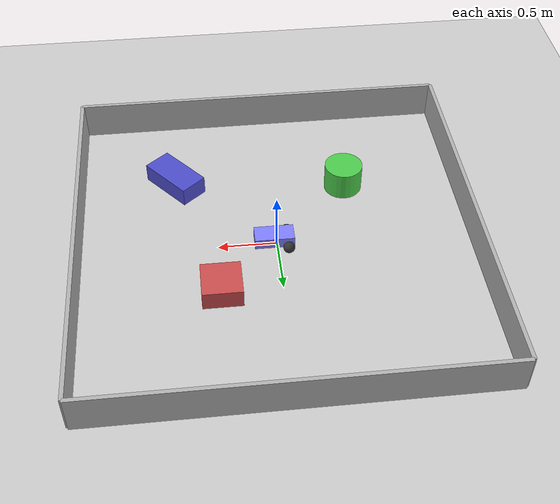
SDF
<?xml version="1.0" ?>
<!-- SCALED TO 1/6 SIZE (scale=0.1667) for ~real robot dimensions -->
<sdf version="1.8">
  <world name="slam_world">

    <physics name="1ms" type="ignored">
      <max_step_size>0.001</max_step_size>
      <real_time_factor>1.0</real_time_factor>
    </physics>

    <plugin
      filename="gz-sim-physics-system"
      name="gz::sim::systems::Physics">
    </plugin>
    <plugin
      filename="gz-sim-sensors-system"
      name="gz::sim::systems::Sensors">
      <render_engine>ogre2</render_engine>
    </plugin>
    <plugin
      filename="gz-sim-imu-system"
      name="gz::sim::systems::Imu">
    </plugin>
    <plugin
      filename="gz-sim-user-commands-system"
      name="gz::sim::systems::UserCommands">
    </plugin>
    <plugin
      filename="gz-sim-scene-broadcaster-system"
      name="gz::sim::systems::SceneBroadcaster">
    </plugin>

    <light type="directional" name="sun">
      <cast_shadows>true</cast_shadows>
      <pose>0.000000 0.000000 1.666667 0 0 0</pose>
      <diffuse>1 1 1 1</diffuse>
      <specular>0.5 0.5 0.5 1</specular>
      <attenuation>
        <range>1000</range>
        <constant>0.9</constant>
        <linear>0.01</linear>
        <quadratic>0.001</quadratic>
      </attenuation>
      <direction>-0.5 0.1 -0.9</direction>
    </light>

    <!-- Ground plane -->
    <model name="ground_plane">
      <static>true</static>
      <link name="link">
        <collision name="collision">
          <geometry>
            <plane>
              <normal>0 0 1</normal>
              <size>100 100</size>
            </plane>
          </geometry>
        </collision>
        <visual name="visual">
          <geometry>
            <plane>
              <normal>0 0 1</normal>
              <size>100 100</size>
            </plane>
          </geometry>
          <material>
            <ambient>0.8 0.8 0.8 1</ambient>
            <diffuse>0.8 0.8 0.8 1</diffuse>
            <specular>0.8 0.8 0.8 1</specular>
          </material>
        </visual>
      </link>
    </model>

    <!-- Outer walls forming a room -->
    <model name="wall_north">
      <static>true</static>
      <pose>0.000000 1.666667 0.166667 0 0 0</pose>
      <link name="link">
        <collision name="collision">
          <geometry>
            <box>
              <size>3.333333 0.033333 0.333333</size>
            </box>
          </geometry>
        </collision>
        <visual name="visual">
          <geometry>
            <box>
              <size>3.333333 0.033333 0.333333</size>
            </box>
          </geometry>
          <material>
            <ambient>0.7 0.7 0.7 1</ambient>
            <diffuse>0.7 0.7 0.7 1</diffuse>
          </material>
        </visual>
      </link>
    </model>

    <model name="wall_south">
      <static>true</static>
      <pose>0.000000 -1.666667 0.166667 0 0 0</pose>
      <link name="link">
        <collision name="collision">
          <geometry>
            <box>
              <size>3.333333 0.033333 0.333333</size>
            </box>
          </geometry>
        </collision>
        <visual name="visual">
          <geometry>
            <box>
              <size>3.333333 0.033333 0.333333</size>
            </box>
          </geometry>
          <material>
            <ambient>0.7 0.7 0.7 1</ambient>
            <diffuse>0.7 0.7 0.7 1</diffuse>
          </material>
        </visual>
      </link>
    </model>

    <model name="wall_east">
      <static>true</static>
      <pose>1.666667 0.000000 0.166667 0 0 0</pose>
      <link name="link">
        <collision name="collision">
          <geometry>
            <box>
              <size>0.033333 3.333333 0.333333</size>
            </box>
          </geometry>
        </collision>
        <visual name="visual">
          <geometry>
            <box>
              <size>0.033333 3.333333 0.333333</size>
            </box>
          </geometry>
          <material>
            <ambient>0.7 0.7 0.7 1</ambient>
            <diffuse>0.7 0.7 0.7 1</diffuse>
          </material>
        </visual>
      </link>
    </model>

    <model name="wall_west">
      <static>true</static>
      <pose>-1.666667 0.000000 0.166667 0 0 0</pose>
      <link name="link">
        <collision name="collision">
          <geometry>
            <box>
              <size>0.033333 3.333333 0.333333</size>
            </box>
          </geometry>
        </collision>
        <visual name="visual">
          <geometry>
            <box>
              <size>0.033333 3.333333 0.333333</size>
            </box>
          </geometry>
          <material>
            <ambient>0.7 0.7 0.7 1</ambient>
            <diffuse>0.7 0.7 0.7 1</diffuse>
          </material>
        </visual>
      </link>
    </model>

    <!-- Some obstacles for SLAM -->
    <model name="obstacle_1">
      <static>true</static>
      <pose>0.500000 0.500000 0.083333 0 0 0</pose>
      <link name="link">
        <collision name="collision">
          <geometry>
            <box>
              <size>0.333333 0.333333 0.166667</size>
            </box>
          </geometry>
        </collision>
        <visual name="visual">
          <geometry>
            <box>
              <size>0.333333 0.333333 0.166667</size>
            </box>
          </geometry>
          <material>
            <ambient>0.5 0.2 0.2 1</ambient>
            <diffuse>0.8 0.3 0.3 1</diffuse>
          </material>
        </visual>
      </link>
    </model>

    <model name="obstacle_2">
      <static>true</static>
      <pose>-0.666667 -0.666667 0.125000 0 0 0</pose>
      <link name="link">
        <collision name="collision">
          <geometry>
            <cylinder>
              <radius>0.166667</radius>
              <length>0.250000</length>
            </cylinder>
          </geometry>
        </collision>
        <visual name="visual">
          <geometry>
            <cylinder>
              <radius>0.166667</radius>
              <length>0.250000</length>
            </cylinder>
          </geometry>
          <material>
            <ambient>0.2 0.5 0.2 1</ambient>
            <diffuse>0.3 0.8 0.3 1</diffuse>
          </material>
        </visual>
      </link>
    </model>

    <model name="obstacle_3">
      <static>true</static>
      <pose>0.833333 -0.833333 0.083333 0 0 0.7</pose>
      <link name="link">
        <collision name="collision">
          <geometry>
            <box>
              <size>0.250000 0.500000 0.166667</size>
            </box>
          </geometry>
        </collision>
        <visual name="visual">
          <geometry>
            <box>
              <size>0.250000 0.500000 0.166667</size>
            </box>
          </geometry>
          <material>
            <ambient>0.2 0.2 0.5 1</ambient>
            <diffuse>0.3 0.3 0.8 1</diffuse>
          </material>
        </visual>
      </link>
    </model>

    <!-- SLAM Robot with diff drive and lidar -->
    <model name='slam_bot'>
      <pose>0.000000 0.000000 0.054167 0 0 3.14159</pose>

      <link name='chassis'>
        <pose>-0.025238 0.000000 0.029167 0 0 0</pose>
        <inertial>
          <mass>3.0</mass>
          <inertia>
            <ixx>0.009</ixx>
            <ixy>0.000000000</ixy>
            <ixz>0.000000000</ixz>
            <iyy>0.030</iyy>
            <iyz>0.000000000</iyz>
            <izz>0.035</izz>
          </inertia>
        </inertial>
        <visual name='visual'>
          <geometry>
            <box>
              <size>0.335237 0.166667 0.094788</size>
            </box>
          </geometry>
          <material>
            <ambient>0.5 0.5 1.0 1</ambient>
            <diffuse>0.5 0.5 1.0 1</diffuse>
            <specular>0.0 0.0 1.0 1</specular>
          </material>
        </visual>
        <collision name='collision'>
          <geometry>
            <box>
              <size>0.335237 0.166667 0.094788</size>
            </box>
          </geometry>
        </collision>

        <!-- 2D Lidar sensor on top of chassis -->
        <sensor name='lidar' type='gpu_lidar'>
          <pose>0.133333 0.000000 0.066667 0 0 0</pose>
          <topic>/slam_bot/scan</topic>
          <gz_frame_id>lidar_link</gz_frame_id>
          <update_rate>10</update_rate>
          <enable_metrics>false</enable_metrics>
          <lidar>
            <scan>
              <horizontal>
                <samples>180</samples>
                <resolution>1</resolution>
                <min_angle>-1.5708</min_angle>
                <max_angle>1.5708</max_angle>
              </horizontal>
            </scan>
            <range>
              <min>0.12</min>
              <max>30.0</max>
              <resolution>0.01</resolution>
            </range>
            <noise>
              <type>gaussian</type>
              <mean>0.0</mean>
              <stddev>0.01</stddev>
            </noise>
          </lidar>
          <always_on>1</always_on>
          <visualize>true</visualize>
        </sensor>

        <!-- IMU sensor at robot center -->
        <sensor name='imu' type='imu'>
          <pose>0.000000 0.000000 0.000000 0 0 0</pose>
          <topic>/slam_bot/imu</topic>
          <gz_frame_id>imu_link</gz_frame_id>
          <update_rate>200</update_rate>
          <enable_metrics>true</enable_metrics>
          <always_on>1</always_on>
          <visualize>true</visualize>
          <imu>
            <orientation_reference_frame>
              <localization>CUSTOM</localization>
              <custom_rpy>0 0 0</custom_rpy>
              <grav_dir_x>0 0 -1</grav_dir_x>
            </orientation_reference_frame>
            <angular_velocity>
              <x>
                <noise type="gaussian">
                  <mean>0.0</mean>
                  <stddev>2e-4</stddev>
                  <bias_mean>0.0000075</bias_mean>
                  <bias_stddev>0.0000008</bias_stddev>
                </noise>
              </x>
              <y>
                <noise type="gaussian">
                  <mean>0.0</mean>
                  <stddev>2e-4</stddev>
                  <bias_mean>0.0000075</bias_mean>
                  <bias_stddev>0.0000008</bias_stddev>
                </noise>
              </y>
              <z>
                <noise type="gaussian">
                  <mean>0.0</mean>
                  <stddev>2e-4</stddev>
                  <bias_mean>0.0000075</bias_mean>
                  <bias_stddev>0.0000008</bias_stddev>
                </noise>
              </z>
            </angular_velocity>
            <linear_acceleration>
              <x>
                <noise type="none"/>
              </x>
              <y>
                <noise type="none"/>
              </y>
              <z>
                <noise type="none"/>
              </z>
            </linear_acceleration>
          </imu>
        </sensor>
      </link>

      <link name='left_wheel'>
        <pose>0.092380 0.104171 -0.004167 -1.5707 0 0</pose>
        <inertial>
          <mass>0.1</mass>
          <inertia>
            <ixx>0.0001</ixx>
            <ixy>0.000000000</ixy>
            <ixz>0.000000000</ixz>
            <iyy>0.0001</iyy>
            <iyz>0.000000000</iyz>
            <izz>0.0001</izz>
          </inertia>
        </inertial>
        <visual name='visual'>
          <geometry>
            <sphere>
              <radius>0.050000</radius>
            </sphere>
          </geometry>
          <material>
            <ambient>0.2 0.2 0.2 1</ambient>
            <diffuse>0.2 0.2 0.2 1</diffuse>
            <specular>0.2 0.2 0.2 1</specular>
          </material>
        </visual>
        <collision name='collision'>
          <geometry>
            <sphere>
              <radius>0.050000</radius>
            </sphere>
          </geometry>
          <surface>
            <friction>
              <ode>
                <mu>1</mu>
                <mu2>1</mu2>
                <slip1>0.035</slip1>
                <slip2>0</slip2>
                <fdir1>0 0 1</fdir1>
              </ode>
            </friction>
          </surface>
        </collision>
      </link>

      <link name='right_wheel'>
        <pose>0.092380 -0.104171 -0.004167 -1.5707 0 0</pose>
        <inertial>
          <mass>0.1</mass>
          <inertia>
            <ixx>0.0001</ixx>
            <ixy>0.000000000</ixy>
            <ixz>0.000000000</ixz>
            <iyy>0.0001</iyy>
            <iyz>0.000000000</iyz>
            <izz>0.0001</izz>
          </inertia>
        </inertial>
        <visual name='visual'>
          <geometry>
            <sphere>
              <radius>0.050000</radius>
            </sphere>
          </geometry>
          <material>
            <ambient>0.2 0.2 0.2 1</ambient>
            <diffuse>0.2 0.2 0.2 1</diffuse>
            <specular>0.2 0.2 0.2 1</specular>
          </material>
        </visual>
        <collision name='collision'>
          <geometry>
            <sphere>
              <radius>0.050000</radius>
            </sphere>
          </geometry>
          <surface>
            <friction>
              <ode>
                <mu>1</mu>
                <mu2>1</mu2>
                <slip1>0.035</slip1>
                <slip2>0</slip2>
                <fdir1>0 0 1</fdir1>
              </ode>
            </friction>
          </surface>
        </collision>
      </link>

      <link name='caster'>
        <pose>-0.159523 0.000000 -0.020833 0 0 0</pose>
        <inertial>
          <mass>0.1</mass>
          <inertia>
            <ixx>0.0001</ixx>
            <ixy>0.000000000</ixy>
            <ixz>0.000000000</ixz>
            <iyy>0.0001</iyy>
            <iyz>0.000000000</iyz>
            <izz>0.0001</izz>
          </inertia>
        </inertial>
        <visual name='visual'>
          <geometry>
            <sphere>
              <radius>0.033333</radius>
            </sphere>
          </geometry>
          <material>
            <ambient>0.2 0.2 0.2 1</ambient>
            <diffuse>0.2 0.2 0.2 1</diffuse>
            <specular>0.2 0.2 0.2 1</specular>
          </material>
        </visual>
        <collision name='collision'>
          <geometry>
            <sphere>
              <radius>0.033333</radius>
            </sphere>
          </geometry>
        </collision>
      </link>

      <joint name='left_wheel_joint' type='revolute'>
        <parent>chassis</parent>
        <child>left_wheel</child>
        <axis>
          0.000000 0.000000 0.166667
          <limit>
            <lower>-1.79769e+308</lower>
            <upper>1.79769e+308</upper>
            <effort>0.09</effort>
            <velocity>20.0</velocity>
          </limit>
        </axis>
      </joint>

      <joint name='right_wheel_joint' type='revolute'>
        <parent>chassis</parent>
        <child>right_wheel</child>
        <axis>
          0.000000 0.000000 0.166667
          <limit>
            <lower>-1.79769e+308</lower>
            <upper>1.79769e+308</upper>
            <effort>0.09</effort>
            <velocity>20.0</velocity>
          </limit>
        </axis>
      </joint>

      <joint name='caster_wheel' type='ball'>
        <parent>chassis</parent>
        <child>caster</child>
      </joint>

      <!-- ros2_control plugin for realistic odometry -->
      <plugin
        filename="gz_ros2_control-system"
        name="gz_ros2_control::GazeboSimROS2ControlPlugin">
        <parameters>/workspace/config/common/ros2_control.yaml</parameters>
        <robot_param_node>robot_state_publisher</robot_param_node>
        <robot_description>robot_description</robot_description>
        <ros>
          <parameter name="use_sim_time" type="bool">true</parameter>
        </ros>
      </plugin>

      <!-- Pose publisher for ground truth -->
      <plugin
        filename="gz-sim-pose-publisher-system"
        name="gz::sim::systems::PosePublisher">
        <publish_link_pose>false</publish_link_pose>
        <publish_collision_pose>false</publish_collision_pose>
        <publish_visual_pose>false</publish_visual_pose>
        <publish_nested_model_pose>false</publish_nested_model_pose>
        <publish_model_pose>true</publish_model_pose>
        <update_frequency>50</update_frequency>
      </plugin>

    </model>

  </world>
</sdf>
